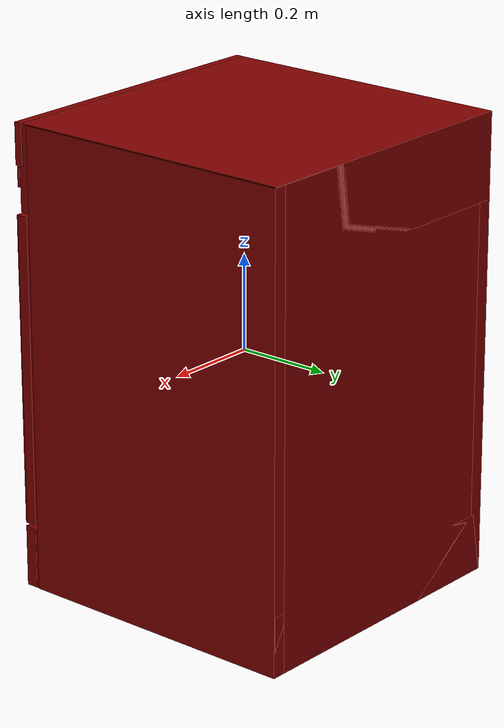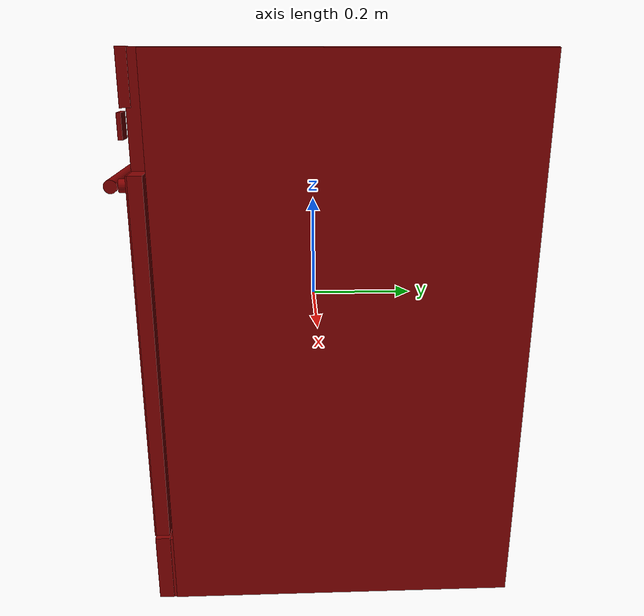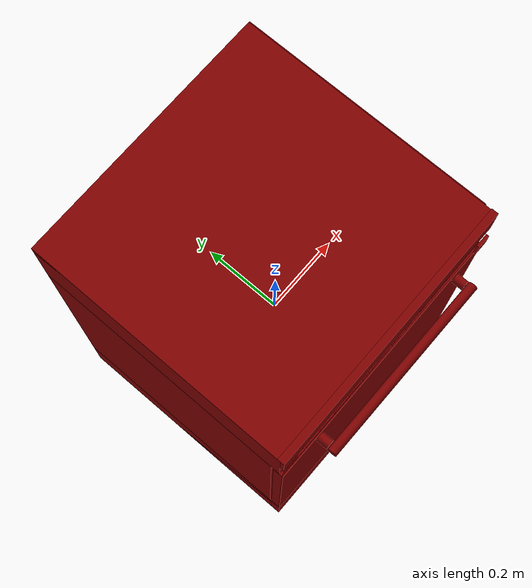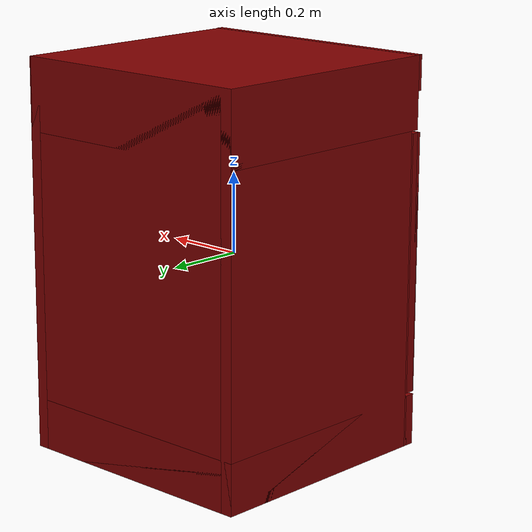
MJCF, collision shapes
<?xml version='1.0' encoding='UTF-8'?>
<mujoco model="model">
  <option timestep="0.002" gravity="0.0 0.0 -9.81"/>
  <compiler angle="radian"/>
  <asset>
    <mesh file="visuals/button_power.obj" name="button_power_vis"/>
    <mesh file="visuals/Body001.obj" name="Body001_vis"/>
    <mesh file="visuals/door.obj" name="door_vis"/>
    <mesh file="visuals/rack0.obj" name="rack0_vis"/>
    <mesh file="visuals/rack1.obj" name="rack1_vis"/>
    <texture file="visuals/T_BC001.png" name="Body001_material" type="2d"/>
    <material name="Body001_material" rgba="1 1 1 1.0" texture="Body001_material" shininess="2" specular="2"/>
    <texture file="visuals/T_BC001.png" name="button_power_material" type="2d"/>
    <material name="button_power_material" rgba="1 1 1 1.0" texture="button_power_material" shininess="2" specular="2"/>
    <texture file="visuals/T_BC001.png" name="door_material" type="2d"/>
    <material name="door_material" rgba="1 1 1 1.0" texture="door_material" shininess="2" specular="2"/>
    <texture file="visuals/T_BC001.png" name="rack0_material" type="2d"/>
    <material name="rack0_material" rgba="1 1 1 1.0" texture="rack0_material" shininess="10" specular="10"/>
    <texture file="visuals/T_BC001.png" name="rack1_material" type="2d"/>
    <material name="rack1_material" rgba="1 1 1 1.0" texture="rack1_material" shininess="10" specular="10"/>
  </asset>
  <default>
    <default class="visual">
      <geom conaffinity="0" contype="0" group="1" type="mesh"/>
    </default>
    <default class="collision">
      <geom group="0" rgba="0.5 0 0 0.5"/>
    </default>
    <default class="spawn">
      <geom group="0" rgba="1 1 1 0.5" contype="0" conaffinity="0"/>
      <site group="0" rgba="1 1 1 0.5"/>
    </default>
    <default class="region">
      <geom group="1" conaffinity="0" contype="0" rgba="0 1 0 0"/>
    </default>
  </default>
  <worldbody>
    <body>
      <body name="object">
        <geom mesh="Body001_vis" type="mesh" solimp="0.998 0.998 0.001" solref="0.001 1" friction="0.95 0.3 0.1" class="visual" material="Body001_material"/>
        <geom class="collision" type="box" pos="-0.31074389815330505 0.04210297390818596 -0.0015653906157240272" size="0.015660235658288002 0.3092889189720154 0.4851975739002228" quat="1.0 0.0 0.0 0.0"/>
        <geom class="collision" type="box" pos="-0.0004225249867886305 -0.285555362701416 -0.4219219982624054" size="0.32598164677619934 0.013015281409025192 0.06484092026948929" quat="1.0 0.0 0.0 0.0"/>
        <geom class="collision" type="box" pos="-0.0014278511516749859 0.031286075711250305 0.3953034281730652" size="0.3249762952327728 0.3201058506965637 0.08955497294664383" quat="1.0 0.0 0.0 0.0"/>
        <geom class="collision" type="box" pos="-0.0008205829653888941 0.026971997693181038 -0.4234071671962738" size="0.3255835771560669 0.3244198262691498 0.06335577368736267" quat="1.0 0.0 0.0 0.0"/>
        <geom class="collision" type="box" pos="0.0009469911456108093 0.2978161871433258 -0.0015653906157240272" size="0.2965596318244934 0.053575702011585236 0.4851975739002228" quat="1.0 0.0 0.0 0.0"/>
        <geom class="collision" type="box" pos="-0.0003573329886421561 -0.28971847891807556 0.442055881023407" size="0.32604682445526123 0.008409310132265091 0.043088555335998535" quat="1.0 0.0 0.0 0.0"/>
        <geom class="collision" type="box" pos="0.28995102643966675 -0.009116381406784058 0.16600890457630157" size="0.016765600070357323 0.24925102293491364 0.012454171665012836" quat="0.9512218236923218 0.0 -0.3085077702999115 0.0"/>
        <geom class="collision" type="box" pos="-0.2861086130142212 -0.010392174124717712 0.16318382322788239" size="0.016765600070357323 0.24744851887226105 0.012454171665012836" quat="1.0 0.0 0.0 0.0"/>
        <geom class="collision" type="box" pos="-0.2861086130142212 -0.010392174124717712 -0.1537511646747589" size="0.016765600070357323 0.24744851887226105 0.012454171665012836" quat="1.0 0.0 0.0 0.0"/>
        <geom class="collision" type="box" pos="0.28995102643966675 -0.009116381406784058 -0.15092608332633972" size="0.016765600070357323 0.24925102293491364 0.012454171665012836" quat="0.9512218236923218 0.0 -0.3085077702999115 0.0"/>
        <geom class="collision" type="box" pos="0.3109588921070099 0.04210297390818596 -0.0015653906157240272" size="0.015445224940776825 0.3092889189720154 0.4851975739002228" quat="1.0 0.0 0.0 0.0"/>
        <body name="button_power">
          <joint axis="0.0 1.0 0.0" pos="0.29694992303848267 -0.3024997115135193 0.3710770905017853" limited="true" name="button_power_joint" range="0.0 0.005" type="slide" damping="1" frictionloss="1" armature=".01" stiffness="4" springref="-1"/>
          <geom mesh="button_power_vis" type="mesh" solimp="0.998 0.998 0.001" solref="0.001 1" friction="0.95 0.3 0.1" class="visual" material="button_power_material"/>
          <geom class="collision" type="box" pos="0.29694992303848267 -0.30306148529052734 0.3710770905017853" size="0.0164952352643013 0.0035244703758507967 0.02042667753994465" quat="1.0 0.0 0.0 0.0"/>
        </body>
        <body name="door">
          <joint axis="1.0 0.0 0.0" pos="-0.00018922117305919528 -0.2985706701874733 -0.349735789000988" limited="true" name="door_joint" range="0.0 0.6035987755982988" type="hinge" damping="1" frictionloss="10" armature="1" stiffness="2"/>
          <geom mesh="door_vis" type="mesh" solimp="0.998 0.998 0.001" solref="0.001 1" friction="0.95 0.3 0.1" class="visual" material="door_material"/>
          <geom class="collision" type="box" pos="-0.00018922117305919528 -0.2843288481235504 -0.025368444621562958" size="0.3262149393558502 0.011756437830626965 0.32436734437942505" quat="1.0 0.0 0.0 0.0"/>
          <geom class="collision" type="cylinder" pos="0.2391108274459839 -0.31386852264404297 0.26950329542160034" size="0.011444659903645515 0.014086979441344738" quat="0.5 0.5 0.4999999701976776 -0.5"/>
          <geom class="collision" type="cylinder" pos="0.015101909637451172 -0.34027668833732605 0.26950329542160034" size="0.01144466269761324 0.23524464666843414" quat="0.7071068286895752 -0.0 0.7071067690849304 0.0" name="door_handle_main"/>
          <geom class="collision" type="cylinder" pos="-0.2097417712211609 -0.31286537647247314 0.2697909474372864" size="0.01144466269761324 0.014086979441344738" quat="0.5 0.5 0.4999999701976776 -0.5"/>
          <geom class="collision" type="box" pos="-0.00018922117305919528 -0.2939428985118866 -0.025368444621562958" size="0.3262149393558502 0.0046277716755867004 0.32436734437942505" quat="1.0 0.0 0.0 0.0" name="door_main"/>
        </body>
        <body name="rack0">
          <geom class="region" name="reg_rack0" type="box" pos="-0.0005035474896430969 0.00885559618473053 -0.1099739819765091" size="0.24927804416418076 0.1946556249856949 0.12362563407421112"/>
          <joint axis="0.0 -1.0 0.0" pos="0.0011369017884135246 0.009013836272060871 -0.19645054638385773" limited="true" name="rack0_joint" range="0.0 0.09" type="slide" damping="1" frictionloss="1" armature=".01" stiffness="0.05"/>
          <geom mesh="rack0_vis" type="mesh" solimp="0.998 0.998 0.001" solref="0.001 1" friction="0.95 0.3 0.1" class="visual" material="rack0_material"/>
          <geom class="collision" type="box" pos="0.2601785659790039 0.009433153085410595 -0.21831165254116058" size="0.0028752374928444624 0.20597416162490845 0.07085639983415604" quat="0.9996649622917175 0.0 0.02588295005261898 0.0"/>
          <geom class="collision" type="box" pos="0.14208747446537018 -0.19310100376605988 -0.17227700352668762" size="0.0028752374928444624 0.0034400008153170347 0.07150132954120636" quat="1.0 0.0 0.0 0.0"/>
          <geom class="collision" type="box" pos="-0.006363436579704285 -0.193630188703537 -0.17979823052883148" size="0.0028752374928444624 0.00291081378236413 0.07902255654335022" quat="1.0 0.0 0.0 0.0"/>
          <geom class="collision" type="box" pos="-0.13641364872455597 -0.19315925240516663 -0.17979823052883148" size="0.0028752374928444624 0.003381751012057066 0.07902255654335022" quat="1.0 0.0 0.0 0.0"/>
          <geom class="collision" type="box" pos="-0.2753942608833313 0.009433153085410595 -0.13552449643611908" size="0.012880324386060238 0.20597416162490845 0.003205620450899005" quat="1.0 0.0 0.0 0.0"/>
          <geom class="collision" type="box" pos="-0.25940003991127014 0.009433153085410595 -0.21402280032634735" size="0.0028752374928444624 0.20597416162490845 0.07541237026453018" quat="0.9998655319213867 0.0 -0.01640046387910843 0.0"/>
          <geom class="collision" type="box" pos="0.24281170964241028 0.009433153085410595 -0.29280000925064087" size="0.016986049711704254 0.20597416162490845 0.0034507845994085073" quat="1.0 0.0 0.0 0.0"/>
          <geom class="collision" type="box" pos="0.13599054515361786 0.00883317831903696 -0.26949208974838257" size="0.0028752374928444624 0.2060575932264328 0.02738598734140396" quat="1.0 0.0 0.0 0.0"/>
          <geom class="collision" type="box" pos="-0.11531074345111847 0.007706544827669859 -0.27247416973114014" size="0.021465769037604332 0.20655052363872528 0.0034507852979004383" quat="0.8538821935653687 0.0 0.5204663276672363 0.0"/>
          <geom class="collision" type="box" pos="-0.17202086746692657 0.00963241420686245 -0.2762652635574341" size="0.04208718240261078 0.2057749181985855 0.0034507852979004383" quat="0.976375937461853 0.0 -0.2160787284374237 0.0"/>
          <geom class="collision" type="box" pos="0.18302851915359497 0.008778777904808521 -0.26716160774230957" size="0.05139434337615967 0.20498640835285187 0.0034507852979004383" quat="0.9649385213851929 0.0 0.26247602701187134 0.0"/>
          <geom class="collision" type="box" pos="0.05050894618034363 0.007706544827669859 -0.2728479504585266" size="0.0846700668334961 0.20655052363872528 0.0034507852979004383" quat="0.9919333457946777 0.0 0.1267605870962143 0.0"/>
          <geom class="collision" type="box" pos="-0.037192992866039276 0.009365230798721313 -0.2719617486000061" size="0.021055378019809723 0.2048918455839157 0.003450785530731082" quat="0.8327611684799194 0.0 -0.5536324381828308 0.0"/>
          <geom class="collision" type="box" pos="-0.028020158410072327 0.032729458063840866 -0.23228012025356293" size="0.06565605849027634 0.18267786502838135 0.003450785530731082" quat="0.8327611684799194 0.0 -0.5536324381828308 0.0"/>
          <geom class="collision" type="box" pos="-0.00038360804319381714 -0.19653765857219696 -0.16516639292240143" size="0.26663410663604736 0.0031389184296131134 0.0034507845994085073" quat="1.0 0.0 0.0 0.0"/>
          <geom class="collision" type="box" pos="0.00156847620382905 -0.19638462364673615 -0.1000041514635086" size="0.29132577776908875 0.0031389184296131134 0.0034507845994085073" quat="1.0 0.0 0.0 0.0"/>
          <geom class="collision" type="box" pos="-0.2851855456829071 0.008442491292953491 -0.11516757309436798" size="0.0028752374928444624 0.20498350262641907 0.017951978370547295" quat="1.0 0.0 0.0 0.0"/>
          <geom class="collision" type="box" pos="-0.07622170448303223 0.009433153085410595 -0.29280000925064087" size="0.03436841815710068 0.20597416162490845 0.0034507845994085073" quat="1.0 0.0 0.0 0.0"/>
          <geom class="collision" type="box" pos="0.00156847620382905 0.2151338905096054 -0.1000041514635086" size="0.29132577776908875 0.0031389184296131134 0.0034507845994085073" quat="1.0 0.0 0.0 0.0"/>
          <geom class="collision" type="box" pos="-0.00038360804319381714 0.2151338905096054 -0.16516639292240143" size="0.26663410663604736 0.0031389184296131134 0.0034507845994085073" quat="1.0 0.0 0.0 0.0"/>
          <geom class="collision" type="box" pos="-0.00038360804319381714 0.2151338905096054 -0.2438908964395523" size="0.26663410663604736 0.0031389184296131134 0.0034507845994085073" quat="1.0 0.0 0.0 0.0"/>
          <geom class="collision" type="box" pos="0.28881484270095825 0.008442491292953491 -0.11348722875118256" size="0.0028752374928444624 0.20498350262641907 0.015420433133840561" quat="1.0 0.0 0.0 0.0"/>
          <geom class="collision" type="box" pos="0.2766624391078949 0.009433153085410595 -0.13924627006053925" size="0.016239330172538757 0.20597416162490845 0.003205620450899005" quat="0.950692892074585 0.0 -0.3101339042186737 0.0"/>
          <geom class="collision" type="box" pos="0.14208747446537018 0.21093378961086273 -0.17227700352668762" size="0.0028752374928444624 0.0034400008153170347 0.07150132954120636" quat="1.0 0.0 0.0 0.0"/>
          <geom class="collision" type="box" pos="0.13117694854736328 0.0095750093460083 -0.2305232137441635" size="0.0028752374928444624 0.1594955176115036 0.06274466961622238" quat="1.0 0.0 0.0 0.0"/>
          <geom class="collision" type="box" pos="-0.13641364872455597 0.21017642319202423 -0.17979823052883148" size="0.0028752374928444624 0.003381751012057066 0.07902255654335022" quat="1.0 0.0 0.0 0.0"/>
          <geom class="collision" type="box" pos="-0.006363436579704285 0.21039453148841858 -0.17979823052883148" size="0.0028752374928444624 0.00291081378236413 0.07902255654335022" quat="1.0 0.0 0.0 0.0"/>
          <geom class="collision" type="box" pos="-0.00038360804319381714 -0.19794560968875885 -0.2438908964395523" size="0.26663410663604736 0.0031389184296131134 0.0034507845994085073" quat="1.0 0.0 0.0 0.0"/>
          <geom class="collision" type="box" pos="-0.23661816120147705 0.009433153085410595 -0.29320621490478516" size="0.02875845693051815 0.20597416162490845 0.0038504458498209715" quat="1.0 0.0 0.0 0.0"/>
        </body>
        <body name="rack1">
          <geom class="region" name="reg_rack1" type="box" pos="-0.0005035474896430969 0.00885559618473053 0.19251640513539314" size="0.24927804416418076 0.1946556249856949 0.10889726302027702"/>
          <joint axis="0.0 -1.0 0.0" pos="0.0011369017884135246 0.009013836272060871 0.11977115273475647" limited="true" name="rack1_joint" range="0.0 0.26" type="slide" damping="1" frictionloss="1" armature=".01" stiffness="0.05"/>
          <geom mesh="rack1_vis" type="mesh" solimp="0.998 0.998 0.001" solref="0.001 1" friction="0.95 0.3 0.1" class="visual" material="rack1_material"/>
          <geom class="collision" type="box" pos="-0.23661816120147705 0.009433153085410595 0.023139236494898796" size="0.02875845693051815 0.20597416162490845 0.0038504458498209715" quat="1.0 0.0 0.0 0.0"/>
          <geom class="collision" type="box" pos="-0.07622170448303223 0.009433153085410595 0.02354547008872032" size="0.03436841815710068 0.20597416162490845 0.0034507845994085073" quat="1.0 0.0 0.0 0.0"/>
          <geom class="collision" type="box" pos="0.24281170964241028 0.009433153085410595 0.02354547008872032" size="0.016986049711704254 0.20597416162490845 0.0034507845994085073" quat="1.0 0.0 0.0 0.0"/>
          <geom class="collision" type="box" pos="-0.25940003991127014 0.009433153085410595 0.10232266783714294" size="0.0028752374928444624 0.20597416162490845 0.07541237026453018" quat="0.9998655319213867 0.0 -0.01640046387910843 0.0"/>
          <geom class="collision" type="box" pos="-0.2753942608833313 0.009433153085410595 0.18082097172737122" size="0.012880324386060238 0.20597416162490845 0.003205620450899005" quat="1.0 0.0 0.0 0.0"/>
          <geom class="collision" type="box" pos="-0.13641364872455597 -0.19315925240516663 0.1365472376346588" size="0.0028752374928444624 0.003381751012057066 0.07902255654335022" quat="1.0 0.0 0.0 0.0"/>
          <geom class="collision" type="box" pos="-0.006363436579704285 -0.193630188703537 0.1365472376346588" size="0.0028752374928444624 0.00291081378236413 0.07902255654335022" quat="1.0 0.0 0.0 0.0"/>
          <geom class="collision" type="box" pos="0.14208747446537018 -0.19310100376605988 0.14406846463680267" size="0.0028752374928444624 0.0034400008153170347 0.07150132954120636" quat="1.0 0.0 0.0 0.0"/>
          <geom class="collision" type="box" pos="0.2601785659790039 0.009433153085410595 0.09803382307291031" size="0.0028752374928444624 0.20597416162490845 0.07085639983415604" quat="0.9996649622917175 0.0 0.02588295005261898 0.0"/>
          <geom class="collision" type="box" pos="-0.00038360804319381714 -0.19794560968875885 0.07245457172393799" size="0.26663410663604736 0.0031389184296131134 0.0034507845994085073" quat="1.0 0.0 0.0 0.0"/>
          <geom class="collision" type="box" pos="-0.006363436579704285 0.21039453148841858 0.1365472376346588" size="0.0028752374928444624 0.00291081378236413 0.07902255654335022" quat="1.0 0.0 0.0 0.0"/>
          <geom class="collision" type="box" pos="-0.13641364872455597 0.21017642319202423 0.1365472376346588" size="0.0028752374928444624 0.003381751012057066 0.07902255654335022" quat="1.0 0.0 0.0 0.0"/>
          <geom class="collision" type="box" pos="0.13117694854736328 0.0095750093460083 0.08582226186990738" size="0.0028752374928444624 0.1594955176115036 0.06274466961622238" quat="1.0 0.0 0.0 0.0"/>
          <geom class="collision" type="box" pos="0.14208747446537018 0.21093378961086273 0.14406846463680267" size="0.0028752374928444624 0.0034400008153170347 0.07150132954120636" quat="1.0 0.0 0.0 0.0"/>
          <geom class="collision" type="box" pos="0.2766624391078949 0.009433153085410595 0.17709919810295105" size="0.016239330172538757 0.20597416162490845 0.003205620450899005" quat="0.950692892074585 0.0 -0.3101339042186737 0.0"/>
          <geom class="collision" type="box" pos="0.28881484270095825 0.008442491292953491 0.20285823941230774" size="0.0028752374928444624 0.20498350262641907 0.015420433133840561" quat="1.0 0.0 0.0 0.0"/>
          <geom class="collision" type="box" pos="-0.00038360804319381714 0.2151338905096054 0.07245457172393799" size="0.26663410663604736 0.0031389184296131134 0.0034507845994085073" quat="1.0 0.0 0.0 0.0"/>
          <geom class="collision" type="box" pos="-0.00038360804319381714 0.2151338905096054 0.15117907524108887" size="0.26663410663604736 0.0031389184296131134 0.0034507845994085073" quat="1.0 0.0 0.0 0.0"/>
          <geom class="collision" type="box" pos="0.00156847620382905 0.2151338905096054 0.2163413166999817" size="0.29132577776908875 0.0031389184296131134 0.0034507845994085073" quat="1.0 0.0 0.0 0.0"/>
          <geom class="collision" type="box" pos="-0.2851855456829071 0.008442491292953491 0.20117789506912231" size="0.0028752374928444624 0.20498350262641907 0.017951978370547295" quat="1.0 0.0 0.0 0.0"/>
          <geom class="collision" type="box" pos="0.00156847620382905 -0.19638462364673615 0.2163413166999817" size="0.29132577776908875 0.0031389184296131134 0.0034507845994085073" quat="1.0 0.0 0.0 0.0"/>
          <geom class="collision" type="box" pos="-0.00038360804319381714 -0.19653765857219696 0.15117907524108887" size="0.26663410663604736 0.0031389184296131134 0.0034507845994085073" quat="1.0 0.0 0.0 0.0"/>
          <geom class="collision" type="box" pos="-0.028020158410072327 0.032729458063840866 0.08406535536050797" size="0.06565605849027634 0.18267786502838135 0.003450785530731082" quat="0.8327611684799194 0.0 -0.5536324381828308 0.0"/>
          <geom class="collision" type="box" pos="-0.037192992866039276 0.009365230798721313 0.04438371956348419" size="0.021055378019809723 0.2048918455839157 0.003450785530731082" quat="0.8327611684799194 0.0 -0.5536324381828308 0.0"/>
          <geom class="collision" type="box" pos="0.05050894618034363 0.007706544827669859 0.043497517704963684" size="0.0846700668334961 0.20655052363872528 0.0034507852979004383" quat="0.9919333457946777 0.0 0.1267605870962143 0.0"/>
          <geom class="collision" type="box" pos="0.18302851915359497 0.008778777904808521 0.04918387532234192" size="0.05139434337615967 0.20498640835285187 0.0034507852979004383" quat="0.9649385213851929 0.0 0.26247602701187134 0.0"/>
          <geom class="collision" type="box" pos="-0.17202086746692657 0.00963241420686245 0.04008018597960472" size="0.04208718240261078 0.2057749181985855 0.0034507852979004383" quat="0.976375937461853 0.0 -0.2160787284374237 0.0"/>
          <geom class="collision" type="box" pos="-0.11531074345111847 0.007706544827669859 0.04387129843235016" size="0.021465769037604332 0.20655052363872528 0.0034507852979004383" quat="0.8538821935653687 0.0 0.5204663276672363 0.0"/>
          <geom class="collision" type="box" pos="0.13599054515361786 0.00883317831903696 0.04685338959097862" size="0.0028752374928444624 0.2060575932264328 0.02738598734140396" quat="1.0 0.0 0.0 0.0"/>
        </body>
        <geom class="region" name="reg_int" type="box" pos="6.364285945892334e-05 -0.014126770198345184 -0.027165621519088745" size="0.29041164910793305 0.2536001110672951 0.3283073434829712"/>
        <geom class="region" name="reg_main" type="box" pos="0.0 0.026410609483718872 3.725290298461914e-08" size="0.3274040946960449 0.3259812424182892 0.4877629408836365"/>
      </body>
    </body>
  </worldbody>
  <actuator>
    <motor name="button_power_joint_actuator" joint="button_power_joint" gear="0.5"/>
    <motor name="door_joint_actuator" joint="door_joint" gear="50"/>
    <motor name="rack0_joint_actuator" joint="rack0_joint" gear="50"/>
    <motor name="rack1_joint_actuator" joint="rack1_joint" gear="50"/>
  </actuator>
</mujoco>
